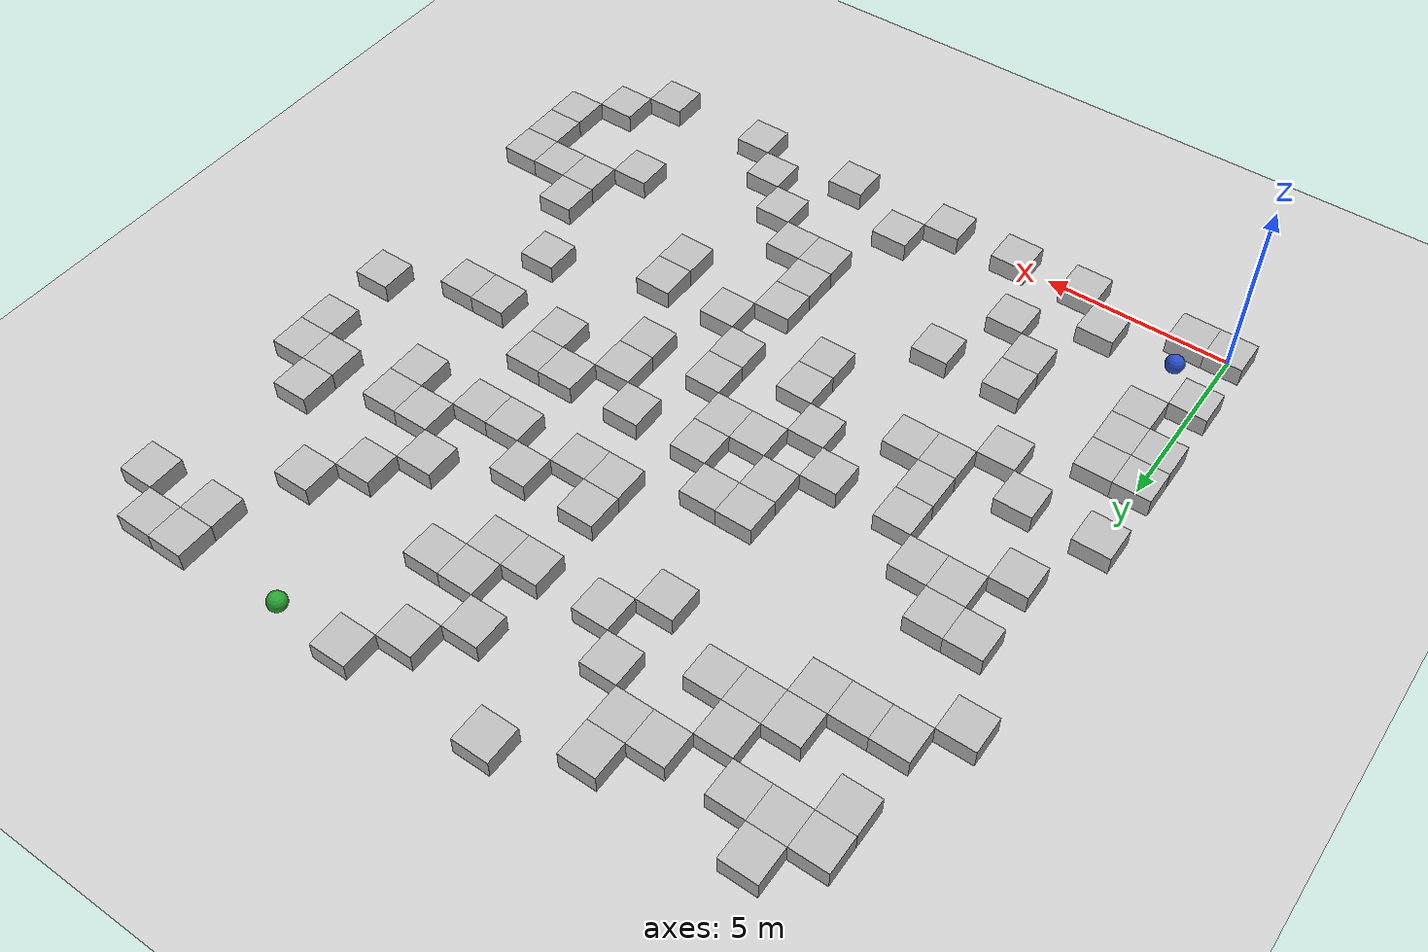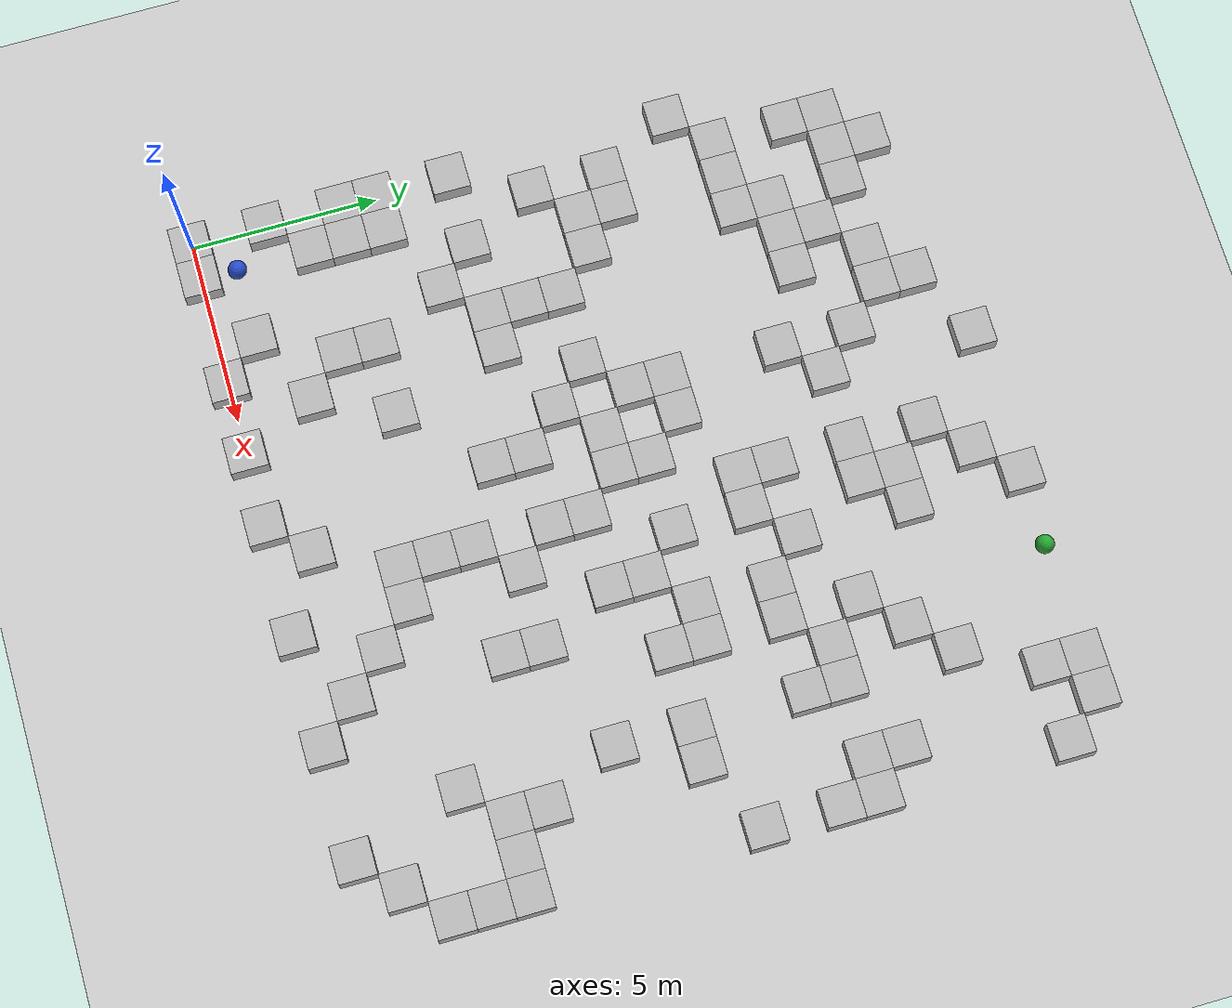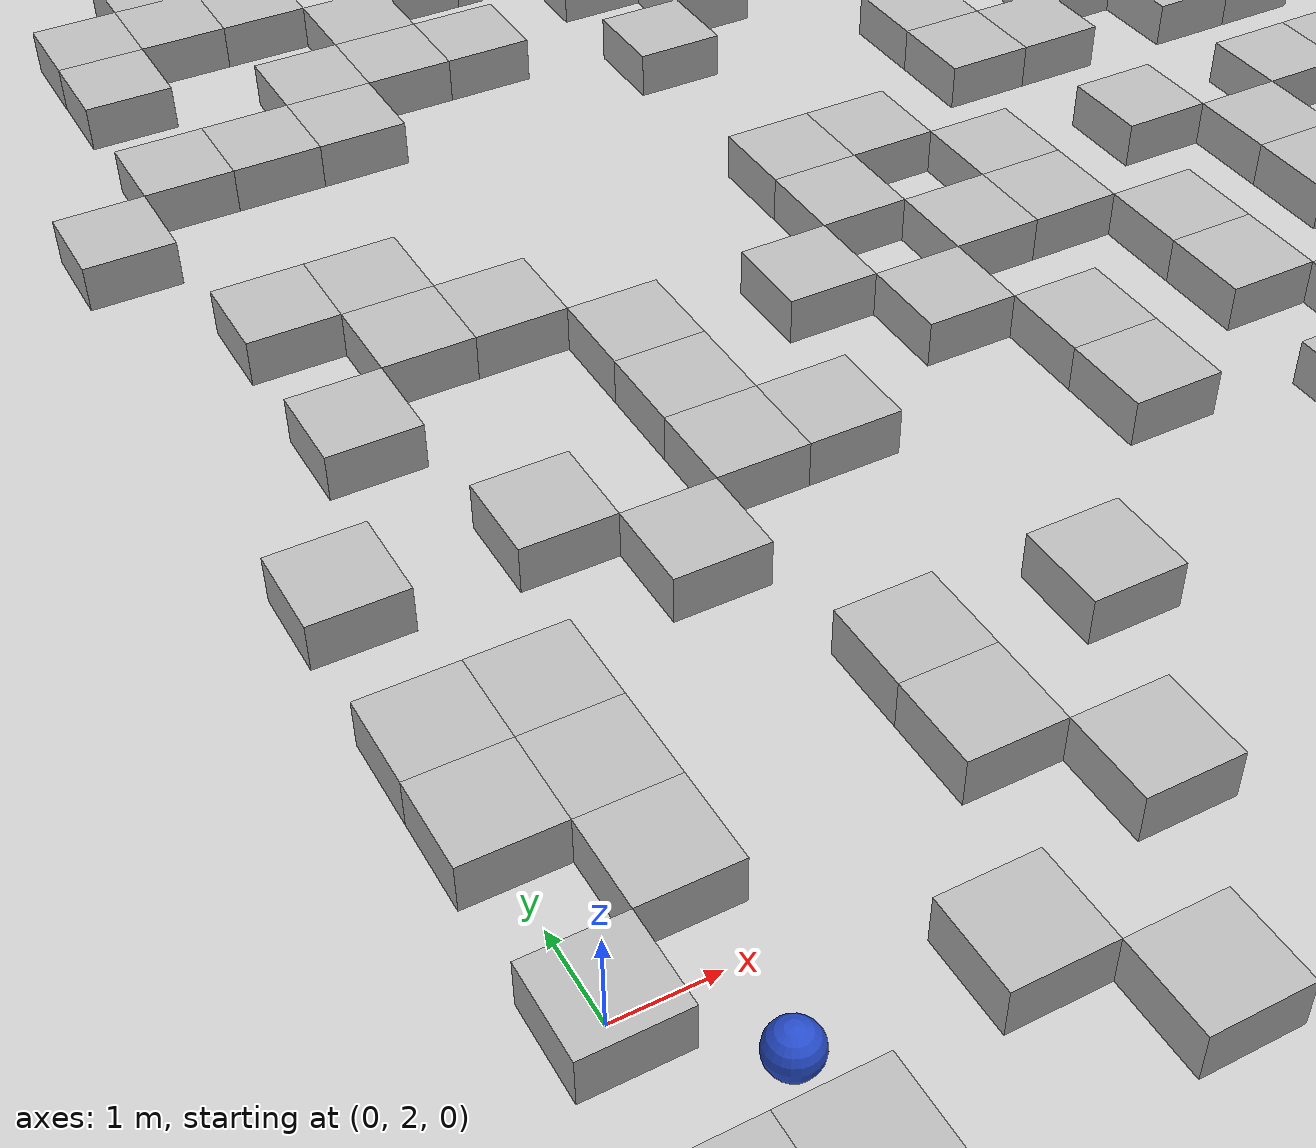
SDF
<sdf version="1.4">
 <world name="default">
  <include><uri>model://ground_plane</uri></include>
  <model name="box">
   <pose>19 18 0 0 0 0</pose>
   <static>true</static>
   <link name="link">
    <collision name="collision"><geometry><box><size>1 1 1</size></box></geometry></collision>
    <visual name="visual"><geometry><box><size>1 1 1</size></box></geometry></visual>
   </link>
  </model>
  <model name="box">
   <pose>19 13 0 0 0 0</pose>
   <static>true</static>
   <link name="link">
    <collision name="collision"><geometry><box><size>1 1 1</size></box></geometry></collision>
    <visual name="visual"><geometry><box><size>1 1 1</size></box></geometry></visual>
   </link>
  </model>
  <model name="box">
   <pose>19 12 0 0 0 0</pose>
   <static>true</static>
   <link name="link">
    <collision name="collision"><geometry><box><size>1 1 1</size></box></geometry></collision>
    <visual name="visual"><geometry><box><size>1 1 1</size></box></geometry></visual>
   </link>
  </model>
  <model name="box">
   <pose>19 10 0 0 0 0</pose>
   <static>true</static>
   <link name="link">
    <collision name="collision"><geometry><box><size>1 1 1</size></box></geometry></collision>
    <visual name="visual"><geometry><box><size>1 1 1</size></box></geometry></visual>
   </link>
  </model>
  <model name="box">
   <pose>19 4 0 0 0 0</pose>
   <static>true</static>
   <link name="link">
    <collision name="collision"><geometry><box><size>1 1 1</size></box></geometry></collision>
    <visual name="visual"><geometry><box><size>1 1 1</size></box></geometry></visual>
   </link>
  </model>
  <model name="box">
   <pose>19 3 0 0 0 0</pose>
   <static>true</static>
   <link name="link">
    <collision name="collision"><geometry><box><size>1 1 1</size></box></geometry></collision>
    <visual name="visual"><geometry><box><size>1 1 1</size></box></geometry></visual>
   </link>
  </model>
  <model name="box">
   <pose>19 2 0 0 0 0</pose>
   <static>true</static>
   <link name="link">
    <collision name="collision"><geometry><box><size>1 1 1</size></box></geometry></collision>
    <visual name="visual"><geometry><box><size>1 1 1</size></box></geometry></visual>
   </link>
  </model>
  <model name="box">
   <pose>18 19 0 0 0 0</pose>
   <static>true</static>
   <link name="link">
    <collision name="collision"><geometry><box><size>1 1 1</size></box></geometry></collision>
    <visual name="visual"><geometry><box><size>1 1 1</size></box></geometry></visual>
   </link>
  </model>
  <model name="box">
   <pose>18 14 0 0 0 0</pose>
   <static>true</static>
   <link name="link">
    <collision name="collision"><geometry><box><size>1 1 1</size></box></geometry></collision>
    <visual name="visual"><geometry><box><size>1 1 1</size></box></geometry></visual>
   </link>
  </model>
  <model name="box">
   <pose>18 13 0 0 0 0</pose>
   <static>true</static>
   <link name="link">
    <collision name="collision"><geometry><box><size>1 1 1</size></box></geometry></collision>
    <visual name="visual"><geometry><box><size>1 1 1</size></box></geometry></visual>
   </link>
  </model>
  <model name="box">
   <pose>18 4 0 0 0 0</pose>
   <static>true</static>
   <link name="link">
    <collision name="collision"><geometry><box><size>1 1 1</size></box></geometry></collision>
    <visual name="visual"><geometry><box><size>1 1 1</size></box></geometry></visual>
   </link>
  </model>
  <model name="box">
   <pose>18 1 0 0 0 0</pose>
   <static>true</static>
   <link name="link">
    <collision name="collision"><geometry><box><size>1 1 1</size></box></geometry></collision>
    <visual name="visual"><geometry><box><size>1 1 1</size></box></geometry></visual>
   </link>
  </model>
  <model name="box">
   <pose>17 19 0 0 0 0</pose>
   <static>true</static>
   <link name="link">
    <collision name="collision"><geometry><box><size>1 1 1</size></box></geometry></collision>
    <visual name="visual"><geometry><box><size>1 1 1</size></box></geometry></visual>
   </link>
  </model>
  <model name="box">
   <pose>17 18 0 0 0 0</pose>
   <static>true</static>
   <link name="link">
    <collision name="collision"><geometry><box><size>1 1 1</size></box></geometry></collision>
    <visual name="visual"><geometry><box><size>1 1 1</size></box></geometry></visual>
   </link>
  </model>
  <model name="box">
   <pose>17 9 0 0 0 0</pose>
   <static>true</static>
   <link name="link">
    <collision name="collision"><geometry><box><size>1 1 1</size></box></geometry></collision>
    <visual name="visual"><geometry><box><size>1 1 1</size></box></geometry></visual>
   </link>
  </model>
  <model name="box">
   <pose>17 5 0 0 0 0</pose>
   <static>true</static>
   <link name="link">
    <collision name="collision"><geometry><box><size>1 1 1</size></box></geometry></collision>
    <visual name="visual"><geometry><box><size>1 1 1</size></box></geometry></visual>
   </link>
  </model>
  <model name="box">
   <pose>17 4 0 0 0 0</pose>
   <static>true</static>
   <link name="link">
    <collision name="collision"><geometry><box><size>1 1 1</size></box></geometry></collision>
    <visual name="visual"><geometry><box><size>1 1 1</size></box></geometry></visual>
   </link>
  </model>
  <model name="box">
   <pose>17 0 0 0 0 0</pose>
   <static>true</static>
   <link name="link">
    <collision name="collision"><geometry><box><size>1 1 1</size></box></geometry></collision>
    <visual name="visual"><geometry><box><size>1 1 1</size></box></geometry></visual>
   </link>
  </model>
  <model name="box">
   <pose>16 16 0 0 0 0</pose>
   <static>true</static>
   <link name="link">
    <collision name="collision"><geometry><box><size>1 1 1</size></box></geometry></collision>
    <visual name="visual"><geometry><box><size>1 1 1</size></box></geometry></visual>
   </link>
  </model>
  <model name="box">
   <pose>16 13 0 0 0 0</pose>
   <static>true</static>
   <link name="link">
    <collision name="collision"><geometry><box><size>1 1 1</size></box></geometry></collision>
    <visual name="visual"><geometry><box><size>1 1 1</size></box></geometry></visual>
   </link>
  </model>
  <model name="box">
   <pose>16 12 0 0 0 0</pose>
   <static>true</static>
   <link name="link">
    <collision name="collision"><geometry><box><size>1 1 1</size></box></geometry></collision>
    <visual name="visual"><geometry><box><size>1 1 1</size></box></geometry></visual>
   </link>
  </model>
  <model name="box">
   <pose>16 9 0 0 0 0</pose>
   <static>true</static>
   <link name="link">
    <collision name="collision"><geometry><box><size>1 1 1</size></box></geometry></collision>
    <visual name="visual"><geometry><box><size>1 1 1</size></box></geometry></visual>
   </link>
  </model>
  <model name="box">
   <pose>16 7 0 0 0 0</pose>
   <static>true</static>
   <link name="link">
    <collision name="collision"><geometry><box><size>1 1 1</size></box></geometry></collision>
    <visual name="visual"><geometry><box><size>1 1 1</size></box></geometry></visual>
   </link>
  </model>
  <model name="box">
   <pose>16 3 0 0 0 0</pose>
   <static>true</static>
   <link name="link">
    <collision name="collision"><geometry><box><size>1 1 1</size></box></geometry></collision>
    <visual name="visual"><geometry><box><size>1 1 1</size></box></geometry></visual>
   </link>
  </model>
  <model name="box">
   <pose>15 15 0 0 0 0</pose>
   <static>true</static>
   <link name="link">
    <collision name="collision"><geometry><box><size>1 1 1</size></box></geometry></collision>
    <visual name="visual"><geometry><box><size>1 1 1</size></box></geometry></visual>
   </link>
  </model>
  <model name="box">
   <pose>15 13 0 0 0 0</pose>
   <static>true</static>
   <link name="link">
    <collision name="collision"><geometry><box><size>1 1 1</size></box></geometry></collision>
    <visual name="visual"><geometry><box><size>1 1 1</size></box></geometry></visual>
   </link>
  </model>
  <model name="box">
   <pose>14 14 0 0 0 0</pose>
   <static>true</static>
   <link name="link">
    <collision name="collision"><geometry><box><size>1 1 1</size></box></geometry></collision>
    <visual name="visual"><geometry><box><size>1 1 1</size></box></geometry></visual>
   </link>
  </model>
  <model name="box">
   <pose>14 12 0 0 0 0</pose>
   <static>true</static>
   <link name="link">
    <collision name="collision"><geometry><box><size>1 1 1</size></box></geometry></collision>
    <visual name="visual"><geometry><box><size>1 1 1</size></box></geometry></visual>
   </link>
  </model>
  <model name="box">
   <pose>14 10 0 0 0 0</pose>
   <static>true</static>
   <link name="link">
    <collision name="collision"><geometry><box><size>1 1 1</size></box></geometry></collision>
    <visual name="visual"><geometry><box><size>1 1 1</size></box></geometry></visual>
   </link>
  </model>
  <model name="box">
   <pose>14 9 0 0 0 0</pose>
   <static>true</static>
   <link name="link">
    <collision name="collision"><geometry><box><size>1 1 1</size></box></geometry></collision>
    <visual name="visual"><geometry><box><size>1 1 1</size></box></geometry></visual>
   </link>
  </model>
  <model name="box">
   <pose>14 0 0 0 0 0</pose>
   <static>true</static>
   <link name="link">
    <collision name="collision"><geometry><box><size>1 1 1</size></box></geometry></collision>
    <visual name="visual"><geometry><box><size>1 1 1</size></box></geometry></visual>
   </link>
  </model>
  <model name="box">
   <pose>13 12 0 0 0 0</pose>
   <static>true</static>
   <link name="link">
    <collision name="collision"><geometry><box><size>1 1 1</size></box></geometry></collision>
    <visual name="visual"><geometry><box><size>1 1 1</size></box></geometry></visual>
   </link>
  </model>
  <model name="box">
   <pose>13 10 0 0 0 0</pose>
   <static>true</static>
   <link name="link">
    <collision name="collision"><geometry><box><size>1 1 1</size></box></geometry></collision>
    <visual name="visual"><geometry><box><size>1 1 1</size></box></geometry></visual>
   </link>
  </model>
  <model name="box">
   <pose>13 6 0 0 0 0</pose>
   <static>true</static>
   <link name="link">
    <collision name="collision"><geometry><box><size>1 1 1</size></box></geometry></collision>
    <visual name="visual"><geometry><box><size>1 1 1</size></box></geometry></visual>
   </link>
  </model>
  <model name="box">
   <pose>13 5 0 0 0 0</pose>
   <static>true</static>
   <link name="link">
    <collision name="collision"><geometry><box><size>1 1 1</size></box></geometry></collision>
    <visual name="visual"><geometry><box><size>1 1 1</size></box></geometry></visual>
   </link>
  </model>
  <model name="box">
   <pose>13 1 0 0 0 0</pose>
   <static>true</static>
   <link name="link">
    <collision name="collision"><geometry><box><size>1 1 1</size></box></geometry></collision>
    <visual name="visual"><geometry><box><size>1 1 1</size></box></geometry></visual>
   </link>
  </model>
  <model name="box">
   <pose>12 19 0 0 0 0</pose>
   <static>true</static>
   <link name="link">
    <collision name="collision"><geometry><box><size>1 1 1</size></box></geometry></collision>
    <visual name="visual"><geometry><box><size>1 1 1</size></box></geometry></visual>
   </link>
  </model>
  <model name="box">
   <pose>12 16 0 0 0 0</pose>
   <static>true</static>
   <link name="link">
    <collision name="collision"><geometry><box><size>1 1 1</size></box></geometry></collision>
    <visual name="visual"><geometry><box><size>1 1 1</size></box></geometry></visual>
   </link>
  </model>
  <model name="box">
   <pose>12 13 0 0 0 0</pose>
   <static>true</static>
   <link name="link">
    <collision name="collision"><geometry><box><size>1 1 1</size></box></geometry></collision>
    <visual name="visual"><geometry><box><size>1 1 1</size></box></geometry></visual>
   </link>
  </model>
  <model name="box">
   <pose>12 9 0 0 0 0</pose>
   <static>true</static>
   <link name="link">
    <collision name="collision"><geometry><box><size>1 1 1</size></box></geometry></collision>
    <visual name="visual"><geometry><box><size>1 1 1</size></box></geometry></visual>
   </link>
  </model>
  <model name="box">
   <pose>12 8 0 0 0 0</pose>
   <static>true</static>
   <link name="link">
    <collision name="collision"><geometry><box><size>1 1 1</size></box></geometry></collision>
    <visual name="visual"><geometry><box><size>1 1 1</size></box></geometry></visual>
   </link>
  </model>
  <model name="box">
   <pose>12 2 0 0 0 0</pose>
   <static>true</static>
   <link name="link">
    <collision name="collision"><geometry><box><size>1 1 1</size></box></geometry></collision>
    <visual name="visual"><geometry><box><size>1 1 1</size></box></geometry></visual>
   </link>
  </model>
  <model name="box">
   <pose>11 18 0 0 0 0</pose>
   <static>true</static>
   <link name="link">
    <collision name="collision"><geometry><box><size>1 1 1</size></box></geometry></collision>
    <visual name="visual"><geometry><box><size>1 1 1</size></box></geometry></visual>
   </link>
  </model>
  <model name="box">
   <pose>11 16 0 0 0 0</pose>
   <static>true</static>
   <link name="link">
    <collision name="collision"><geometry><box><size>1 1 1</size></box></geometry></collision>
    <visual name="visual"><geometry><box><size>1 1 1</size></box></geometry></visual>
   </link>
  </model>
  <model name="box">
   <pose>11 15 0 0 0 0</pose>
   <static>true</static>
   <link name="link">
    <collision name="collision"><geometry><box><size>1 1 1</size></box></geometry></collision>
    <visual name="visual"><geometry><box><size>1 1 1</size></box></geometry></visual>
   </link>
  </model>
  <model name="box">
   <pose>11 12 0 0 0 0</pose>
   <static>true</static>
   <link name="link">
    <collision name="collision"><geometry><box><size>1 1 1</size></box></geometry></collision>
    <visual name="visual"><geometry><box><size>1 1 1</size></box></geometry></visual>
   </link>
  </model>
  <model name="box">
   <pose>11 10 0 0 0 0</pose>
   <static>true</static>
   <link name="link">
    <collision name="collision"><geometry><box><size>1 1 1</size></box></geometry></collision>
    <visual name="visual"><geometry><box><size>1 1 1</size></box></geometry></visual>
   </link>
  </model>
  <model name="box">
   <pose>11 6 0 0 0 0</pose>
   <static>true</static>
   <link name="link">
    <collision name="collision"><geometry><box><size>1 1 1</size></box></geometry></collision>
    <visual name="visual"><geometry><box><size>1 1 1</size></box></geometry></visual>
   </link>
  </model>
  <model name="box">
   <pose>11 3 0 0 0 0</pose>
   <static>true</static>
   <link name="link">
    <collision name="collision"><geometry><box><size>1 1 1</size></box></geometry></collision>
    <visual name="visual"><geometry><box><size>1 1 1</size></box></geometry></visual>
   </link>
  </model>
  <model name="box">
   <pose>11 0 0 0 0 0</pose>
   <static>true</static>
   <link name="link">
    <collision name="collision"><geometry><box><size>1 1 1</size></box></geometry></collision>
    <visual name="visual"><geometry><box><size>1 1 1</size></box></geometry></visual>
   </link>
  </model>
  <model name="box">
   <pose>10 17 0 0 0 0</pose>
   <static>true</static>
   <link name="link">
    <collision name="collision"><geometry><box><size>1 1 1</size></box></geometry></collision>
    <visual name="visual"><geometry><box><size>1 1 1</size></box></geometry></visual>
   </link>
  </model>
  <model name="box">
   <pose>10 15 0 0 0 0</pose>
   <static>true</static>
   <link name="link">
    <collision name="collision"><geometry><box><size>1 1 1</size></box></geometry></collision>
    <visual name="visual"><geometry><box><size>1 1 1</size></box></geometry></visual>
   </link>
  </model>
  <model name="box">
   <pose>10 13 0 0 0 0</pose>
   <static>true</static>
   <link name="link">
    <collision name="collision"><geometry><box><size>1 1 1</size></box></geometry></collision>
    <visual name="visual"><geometry><box><size>1 1 1</size></box></geometry></visual>
   </link>
  </model>
  <model name="box">
   <pose>10 12 0 0 0 0</pose>
   <static>true</static>
   <link name="link">
    <collision name="collision"><geometry><box><size>1 1 1</size></box></geometry></collision>
    <visual name="visual"><geometry><box><size>1 1 1</size></box></geometry></visual>
   </link>
  </model>
  <model name="box">
   <pose>10 8 0 0 0 0</pose>
   <static>true</static>
   <link name="link">
    <collision name="collision"><geometry><box><size>1 1 1</size></box></geometry></collision>
    <visual name="visual"><geometry><box><size>1 1 1</size></box></geometry></visual>
   </link>
  </model>
  <model name="box">
   <pose>10 7 0 0 0 0</pose>
   <static>true</static>
   <link name="link">
    <collision name="collision"><geometry><box><size>1 1 1</size></box></geometry></collision>
    <visual name="visual"><geometry><box><size>1 1 1</size></box></geometry></visual>
   </link>
  </model>
  <model name="box">
   <pose>10 5 0 0 0 0</pose>
   <static>true</static>
   <link name="link">
    <collision name="collision"><geometry><box><size>1 1 1</size></box></geometry></collision>
    <visual name="visual"><geometry><box><size>1 1 1</size></box></geometry></visual>
   </link>
  </model>
  <model name="box">
   <pose>10 4 0 0 0 0</pose>
   <static>true</static>
   <link name="link">
    <collision name="collision"><geometry><box><size>1 1 1</size></box></geometry></collision>
    <visual name="visual"><geometry><box><size>1 1 1</size></box></geometry></visual>
   </link>
  </model>
  <model name="box">
   <pose>10 3 0 0 0 0</pose>
   <static>true</static>
   <link name="link">
    <collision name="collision"><geometry><box><size>1 1 1</size></box></geometry></collision>
    <visual name="visual"><geometry><box><size>1 1 1</size></box></geometry></visual>
   </link>
  </model>
  <model name="box">
   <pose>9 10 0 0 0 0</pose>
   <static>true</static>
   <link name="link">
    <collision name="collision"><geometry><box><size>1 1 1</size></box></geometry></collision>
    <visual name="visual"><geometry><box><size>1 1 1</size></box></geometry></visual>
   </link>
  </model>
  <model name="box">
   <pose>9 9 0 0 0 0</pose>
   <static>true</static>
   <link name="link">
    <collision name="collision"><geometry><box><size>1 1 1</size></box></geometry></collision>
    <visual name="visual"><geometry><box><size>1 1 1</size></box></geometry></visual>
   </link>
  </model>
  <model name="box">
   <pose>9 1 0 0 0 0</pose>
   <static>true</static>
   <link name="link">
    <collision name="collision"><geometry><box><size>1 1 1</size></box></geometry></collision>
    <visual name="visual"><geometry><box><size>1 1 1</size></box></geometry></visual>
   </link>
  </model>
  <model name="box">
   <pose>8 19 0 0 0 0</pose>
   <static>true</static>
   <link name="link">
    <collision name="collision"><geometry><box><size>1 1 1</size></box></geometry></collision>
    <visual name="visual"><geometry><box><size>1 1 1</size></box></geometry></visual>
   </link>
  </model>
  <model name="box">
   <pose>8 15 0 0 0 0</pose>
   <static>true</static>
   <link name="link">
    <collision name="collision"><geometry><box><size>1 1 1</size></box></geometry></collision>
    <visual name="visual"><geometry><box><size>1 1 1</size></box></geometry></visual>
   </link>
  </model>
  <model name="box">
   <pose>8 11 0 0 0 0</pose>
   <static>true</static>
   <link name="link">
    <collision name="collision"><geometry><box><size>1 1 1</size></box></geometry></collision>
    <visual name="visual"><geometry><box><size>1 1 1</size></box></geometry></visual>
   </link>
  </model>
  <model name="box">
   <pose>8 9 0 0 0 0</pose>
   <static>true</static>
   <link name="link">
    <collision name="collision"><geometry><box><size>1 1 1</size></box></geometry></collision>
    <visual name="visual"><geometry><box><size>1 1 1</size></box></geometry></visual>
   </link>
  </model>
  <model name="box">
   <pose>8 7 0 0 0 0</pose>
   <static>true</static>
   <link name="link">
    <collision name="collision"><geometry><box><size>1 1 1</size></box></geometry></collision>
    <visual name="visual"><geometry><box><size>1 1 1</size></box></geometry></visual>
   </link>
  </model>
  <model name="box">
   <pose>8 6 0 0 0 0</pose>
   <static>true</static>
   <link name="link">
    <collision name="collision"><geometry><box><size>1 1 1</size></box></geometry></collision>
    <visual name="visual"><geometry><box><size>1 1 1</size></box></geometry></visual>
   </link>
  </model>
  <model name="box">
   <pose>8 0 0 0 0 0</pose>
   <static>true</static>
   <link name="link">
    <collision name="collision"><geometry><box><size>1 1 1</size></box></geometry></collision>
    <visual name="visual"><geometry><box><size>1 1 1</size></box></geometry></visual>
   </link>
  </model>
  <model name="box">
   <pose>7 16 0 0 0 0</pose>
   <static>true</static>
   <link name="link">
    <collision name="collision"><geometry><box><size>1 1 1</size></box></geometry></collision>
    <visual name="visual"><geometry><box><size>1 1 1</size></box></geometry></visual>
   </link>
  </model>
  <model name="box">
   <pose>7 14 0 0 0 0</pose>
   <static>true</static>
   <link name="link">
    <collision name="collision"><geometry><box><size>1 1 1</size></box></geometry></collision>
    <visual name="visual"><geometry><box><size>1 1 1</size></box></geometry></visual>
   </link>
  </model>
  <model name="box">
   <pose>7 11 0 0 0 0</pose>
   <static>true</static>
   <link name="link">
    <collision name="collision"><geometry><box><size>1 1 1</size></box></geometry></collision>
    <visual name="visual"><geometry><box><size>1 1 1</size></box></geometry></visual>
   </link>
  </model>
  <model name="box">
   <pose>7 10 0 0 0 0</pose>
   <static>true</static>
   <link name="link">
    <collision name="collision"><geometry><box><size>1 1 1</size></box></geometry></collision>
    <visual name="visual"><geometry><box><size>1 1 1</size></box></geometry></visual>
   </link>
  </model>
  <model name="box">
   <pose>7 8 0 0 0 0</pose>
   <static>true</static>
   <link name="link">
    <collision name="collision"><geometry><box><size>1 1 1</size></box></geometry></collision>
    <visual name="visual"><geometry><box><size>1 1 1</size></box></geometry></visual>
   </link>
  </model>
  <model name="box">
   <pose>6 18 0 0 0 0</pose>
   <static>true</static>
   <link name="link">
    <collision name="collision"><geometry><box><size>1 1 1</size></box></geometry></collision>
    <visual name="visual"><geometry><box><size>1 1 1</size></box></geometry></visual>
   </link>
  </model>
  <model name="box">
   <pose>6 17 0 0 0 0</pose>
   <static>true</static>
   <link name="link">
    <collision name="collision"><geometry><box><size>1 1 1</size></box></geometry></collision>
    <visual name="visual"><geometry><box><size>1 1 1</size></box></geometry></visual>
   </link>
  </model>
  <model name="box">
   <pose>6 9 0 0 0 0</pose>
   <static>true</static>
   <link name="link">
    <collision name="collision"><geometry><box><size>1 1 1</size></box></geometry></collision>
    <visual name="visual"><geometry><box><size>1 1 1</size></box></geometry></visual>
   </link>
  </model>
  <model name="box">
   <pose>6 4 0 0 0 0</pose>
   <static>true</static>
   <link name="link">
    <collision name="collision"><geometry><box><size>1 1 1</size></box></geometry></collision>
    <visual name="visual"><geometry><box><size>1 1 1</size></box></geometry></visual>
   </link>
  </model>
  <model name="box">
   <pose>6 0 0 0 0 0</pose>
   <static>true</static>
   <link name="link">
    <collision name="collision"><geometry><box><size>1 1 1</size></box></geometry></collision>
    <visual name="visual"><geometry><box><size>1 1 1</size></box></geometry></visual>
   </link>
  </model>
  <model name="box">
   <pose>5 17 0 0 0 0</pose>
   <static>true</static>
   <link name="link">
    <collision name="collision"><geometry><box><size>1 1 1</size></box></geometry></collision>
    <visual name="visual"><geometry><box><size>1 1 1</size></box></geometry></visual>
   </link>
  </model>
  <model name="box">
   <pose>5 15 0 0 0 0</pose>
   <static>true</static>
   <link name="link">
    <collision name="collision"><geometry><box><size>1 1 1</size></box></geometry></collision>
    <visual name="visual"><geometry><box><size>1 1 1</size></box></geometry></visual>
   </link>
  </model>
  <model name="box">
   <pose>5 7 0 0 0 0</pose>
   <static>true</static>
   <link name="link">
    <collision name="collision"><geometry><box><size>1 1 1</size></box></geometry></collision>
    <visual name="visual"><geometry><box><size>1 1 1</size></box></geometry></visual>
   </link>
  </model>
  <model name="box">
   <pose>5 2 0 0 0 0</pose>
   <static>true</static>
   <link name="link">
    <collision name="collision"><geometry><box><size>1 1 1</size></box></geometry></collision>
    <visual name="visual"><geometry><box><size>1 1 1</size></box></geometry></visual>
   </link>
  </model>
  <model name="box">
   <pose>4 16 0 0 0 0</pose>
   <static>true</static>
   <link name="link">
    <collision name="collision"><geometry><box><size>1 1 1</size></box></geometry></collision>
    <visual name="visual"><geometry><box><size>1 1 1</size></box></geometry></visual>
   </link>
  </model>
  <model name="box">
   <pose>4 15 0 0 0 0</pose>
   <static>true</static>
   <link name="link">
    <collision name="collision"><geometry><box><size>1 1 1</size></box></geometry></collision>
    <visual name="visual"><geometry><box><size>1 1 1</size></box></geometry></visual>
   </link>
  </model>
  <model name="box">
   <pose>4 9 0 0 0 0</pose>
   <static>true</static>
   <link name="link">
    <collision name="collision"><geometry><box><size>1 1 1</size></box></geometry></collision>
    <visual name="visual"><geometry><box><size>1 1 1</size></box></geometry></visual>
   </link>
  </model>
  <model name="box">
   <pose>4 8 0 0 0 0</pose>
   <static>true</static>
   <link name="link">
    <collision name="collision"><geometry><box><size>1 1 1</size></box></geometry></collision>
    <visual name="visual"><geometry><box><size>1 1 1</size></box></geometry></visual>
   </link>
  </model>
  <model name="box">
   <pose>4 7 0 0 0 0</pose>
   <static>true</static>
   <link name="link">
    <collision name="collision"><geometry><box><size>1 1 1</size></box></geometry></collision>
    <visual name="visual"><geometry><box><size>1 1 1</size></box></geometry></visual>
   </link>
  </model>
  <model name="box">
   <pose>4 4 0 0 0 0</pose>
   <static>true</static>
   <link name="link">
    <collision name="collision"><geometry><box><size>1 1 1</size></box></geometry></collision>
    <visual name="visual"><geometry><box><size>1 1 1</size></box></geometry></visual>
   </link>
  </model>
  <model name="box">
   <pose>4 3 0 0 0 0</pose>
   <static>true</static>
   <link name="link">
    <collision name="collision"><geometry><box><size>1 1 1</size></box></geometry></collision>
    <visual name="visual"><geometry><box><size>1 1 1</size></box></geometry></visual>
   </link>
  </model>
  <model name="box">
   <pose>4 0 0 0 0 0</pose>
   <static>true</static>
   <link name="link">
    <collision name="collision"><geometry><box><size>1 1 1</size></box></geometry></collision>
    <visual name="visual"><geometry><box><size>1 1 1</size></box></geometry></visual>
   </link>
  </model>
  <model name="box">
   <pose>3 17 0 0 0 0</pose>
   <static>true</static>
   <link name="link">
    <collision name="collision"><geometry><box><size>1 1 1</size></box></geometry></collision>
    <visual name="visual"><geometry><box><size>1 1 1</size></box></geometry></visual>
   </link>
  </model>
  <model name="box">
   <pose>3 15 0 0 0 0</pose>
   <static>true</static>
   <link name="link">
    <collision name="collision"><geometry><box><size>1 1 1</size></box></geometry></collision>
    <visual name="visual"><geometry><box><size>1 1 1</size></box></geometry></visual>
   </link>
  </model>
  <model name="box">
   <pose>3 14 0 0 0 0</pose>
   <static>true</static>
   <link name="link">
    <collision name="collision"><geometry><box><size>1 1 1</size></box></geometry></collision>
    <visual name="visual"><geometry><box><size>1 1 1</size></box></geometry></visual>
   </link>
  </model>
  <model name="box">
   <pose>3 10 0 0 0 0</pose>
   <static>true</static>
   <link name="link">
    <collision name="collision"><geometry><box><size>1 1 1</size></box></geometry></collision>
    <visual name="visual"><geometry><box><size>1 1 1</size></box></geometry></visual>
   </link>
  </model>
  <model name="box">
   <pose>3 6 0 0 0 0</pose>
   <static>true</static>
   <link name="link">
    <collision name="collision"><geometry><box><size>1 1 1</size></box></geometry></collision>
    <visual name="visual"><geometry><box><size>1 1 1</size></box></geometry></visual>
   </link>
  </model>
  <model name="box">
   <pose>3 1 0 0 0 0</pose>
   <static>true</static>
   <link name="link">
    <collision name="collision"><geometry><box><size>1 1 1</size></box></geometry></collision>
    <visual name="visual"><geometry><box><size>1 1 1</size></box></geometry></visual>
   </link>
  </model>
  <model name="box">
   <pose>2 18 0 0 0 0</pose>
   <static>true</static>
   <link name="link">
    <collision name="collision"><geometry><box><size>1 1 1</size></box></geometry></collision>
    <visual name="visual"><geometry><box><size>1 1 1</size></box></geometry></visual>
   </link>
  </model>
  <model name="box">
   <pose>2 17 0 0 0 0</pose>
   <static>true</static>
   <link name="link">
    <collision name="collision"><geometry><box><size>1 1 1</size></box></geometry></collision>
    <visual name="visual"><geometry><box><size>1 1 1</size></box></geometry></visual>
   </link>
  </model>
  <model name="box">
   <pose>2 14 0 0 0 0</pose>
   <static>true</static>
   <link name="link">
    <collision name="collision"><geometry><box><size>1 1 1</size></box></geometry></collision>
    <visual name="visual"><geometry><box><size>1 1 1</size></box></geometry></visual>
   </link>
  </model>
  <model name="box">
   <pose>2 11 0 0 0 0</pose>
   <static>true</static>
   <link name="link">
    <collision name="collision"><geometry><box><size>1 1 1</size></box></geometry></collision>
    <visual name="visual"><geometry><box><size>1 1 1</size></box></geometry></visual>
   </link>
  </model>
  <model name="box">
   <pose>2 10 0 0 0 0</pose>
   <static>true</static>
   <link name="link">
    <collision name="collision"><geometry><box><size>1 1 1</size></box></geometry></collision>
    <visual name="visual"><geometry><box><size>1 1 1</size></box></geometry></visual>
   </link>
  </model>
  <model name="box">
   <pose>2 7 0 0 0 0</pose>
   <static>true</static>
   <link name="link">
    <collision name="collision"><geometry><box><size>1 1 1</size></box></geometry></collision>
    <visual name="visual"><geometry><box><size>1 1 1</size></box></geometry></visual>
   </link>
  </model>
  <model name="box">
   <pose>1 17 0 0 0 0</pose>
   <static>true</static>
   <link name="link">
    <collision name="collision"><geometry><box><size>1 1 1</size></box></geometry></collision>
    <visual name="visual"><geometry><box><size>1 1 1</size></box></geometry></visual>
   </link>
  </model>
  <model name="box">
   <pose>1 16 0 0 0 0</pose>
   <static>true</static>
   <link name="link">
    <collision name="collision"><geometry><box><size>1 1 1</size></box></geometry></collision>
    <visual name="visual"><geometry><box><size>1 1 1</size></box></geometry></visual>
   </link>
  </model>
  <model name="box">
   <pose>1 14 0 0 0 0</pose>
   <static>true</static>
   <link name="link">
    <collision name="collision"><geometry><box><size>1 1 1</size></box></geometry></collision>
    <visual name="visual"><geometry><box><size>1 1 1</size></box></geometry></visual>
   </link>
  </model>
  <model name="box">
   <pose>1 11 0 0 0 0</pose>
   <static>true</static>
   <link name="link">
    <collision name="collision"><geometry><box><size>1 1 1</size></box></geometry></collision>
    <visual name="visual"><geometry><box><size>1 1 1</size></box></geometry></visual>
   </link>
  </model>
  <model name="box">
   <pose>1 9 0 0 0 0</pose>
   <static>true</static>
   <link name="link">
    <collision name="collision"><geometry><box><size>1 1 1</size></box></geometry></collision>
    <visual name="visual"><geometry><box><size>1 1 1</size></box></geometry></visual>
   </link>
  </model>
  <model name="box">
   <pose>1 5 0 0 0 0</pose>
   <static>true</static>
   <link name="link">
    <collision name="collision"><geometry><box><size>1 1 1</size></box></geometry></collision>
    <visual name="visual"><geometry><box><size>1 1 1</size></box></geometry></visual>
   </link>
  </model>
  <model name="box">
   <pose>1 4 0 0 0 0</pose>
   <static>true</static>
   <link name="link">
    <collision name="collision"><geometry><box><size>1 1 1</size></box></geometry></collision>
    <visual name="visual"><geometry><box><size>1 1 1</size></box></geometry></visual>
   </link>
  </model>
  <model name="box">
   <pose>1 3 0 0 0 0</pose>
   <static>true</static>
   <link name="link">
    <collision name="collision"><geometry><box><size>1 1 1</size></box></geometry></collision>
    <visual name="visual"><geometry><box><size>1 1 1</size></box></geometry></visual>
   </link>
  </model>
  <model name="box">
   <pose>1 0 0 0 0 0</pose>
   <static>true</static>
   <link name="link">
    <collision name="collision"><geometry><box><size>1 1 1</size></box></geometry></collision>
    <visual name="visual"><geometry><box><size>1 1 1</size></box></geometry></visual>
   </link>
  </model>
  <model name="box">
   <pose>0 13 0 0 0 0</pose>
   <static>true</static>
   <link name="link">
    <collision name="collision"><geometry><box><size>1 1 1</size></box></geometry></collision>
    <visual name="visual"><geometry><box><size>1 1 1</size></box></geometry></visual>
   </link>
  </model>
  <model name="box">
   <pose>0 7 0 0 0 0</pose>
   <static>true</static>
   <link name="link">
    <collision name="collision"><geometry><box><size>1 1 1</size></box></geometry></collision>
    <visual name="visual"><geometry><box><size>1 1 1</size></box></geometry></visual>
   </link>
  </model>
  <model name="box">
   <pose>0 5 0 0 0 0</pose>
   <static>true</static>
   <link name="link">
    <collision name="collision"><geometry><box><size>1 1 1</size></box></geometry></collision>
    <visual name="visual"><geometry><box><size>1 1 1</size></box></geometry></visual>
   </link>
  </model>
  <model name="box">
   <pose>0 4 0 0 0 0</pose>
   <static>true</static>
   <link name="link">
    <collision name="collision"><geometry><box><size>1 1 1</size></box></geometry></collision>
    <visual name="visual"><geometry><box><size>1 1 1</size></box></geometry></visual>
   </link>
  </model>
  <model name="box">
   <pose>0 2 0 0 0 0</pose>
   <static>true</static>
   <link name="link">
    <collision name="collision"><geometry><box><size>1 1 1</size></box></geometry></collision>
    <visual name="visual"><geometry><box><size>1 1 1</size></box></geometry></visual>
   </link>
  </model>
  <model name="box">
   <static>true</static>
   <link name="link">
    <collision name="collision"><geometry><box><size>1 1 1</size></box></geometry></collision>
    <visual name="visual"><geometry><box><size>1 1 1</size></box></geometry></visual>
   </link>
  </model>
  <model name="target_marble">
   <link name="link">
    <pose>14 19 0.25 0 0 0</pose>
    <collision name="collision"><geometry><sphere><radius>0.25</radius></sphere></geometry></collision>
    <visual name="visual">
     <geometry><sphere><radius>0.25</radius></sphere></geometry>
     <material>
      <script><uri>file://media/materials/scripts/gazebo.material</uri><name>Gazebo/Green</name></script>
     </material>
    </visual>
   </link>
  </model>
  <model name="marble">
   <link name="link">
    <pose>1 1 0.25 0 0 0</pose>
    <collision name="collision"><geometry><sphere><radius>0.25</radius></sphere></geometry></collision>
    <visual name="visual">
     <geometry><sphere><radius>0.25</radius></sphere></geometry>
     <material>
      <script><uri>file://media/materials/scripts/gazebo.material</uri><name>Gazebo/Blue</name></script>
     </material>
    </visual>
   </link>
   <plugin filename="build/libdiscrete.so" name="discrete"/>
  </model>
  <include><uri>model://sun</uri></include>
 </world>
</sdf>
